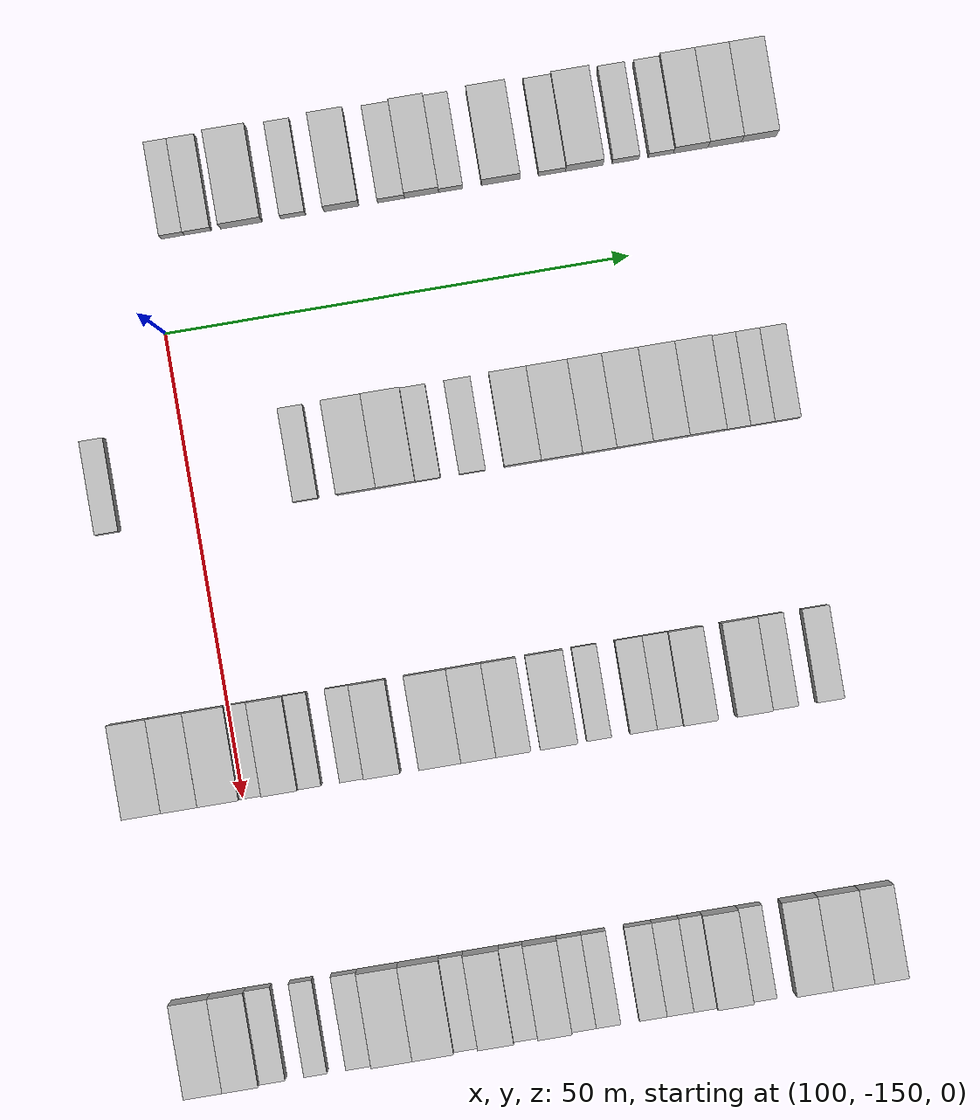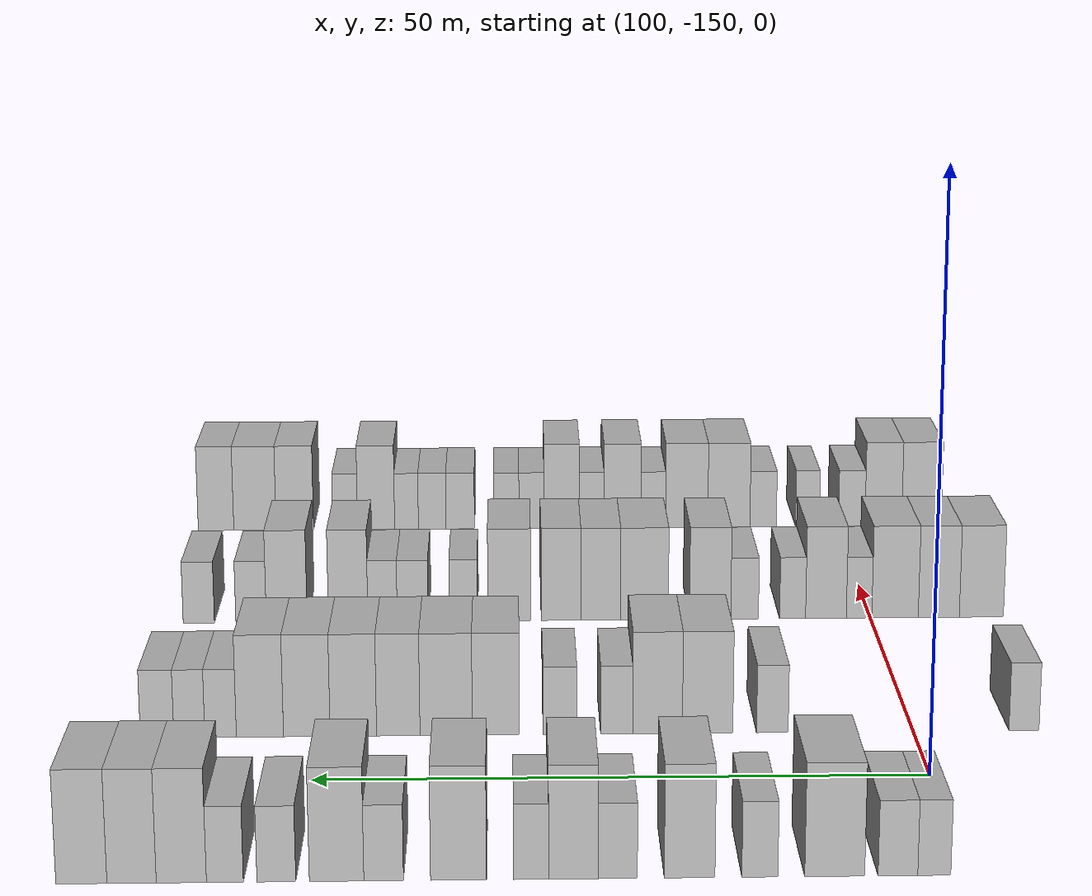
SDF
<sdf version="1.6">
 <world name="default">
  <model name="building_519">
   <static>1</static>
   <pose>85.0000 -147.4879 0 0.000000 0.000000 0.000000</pose>
   <link name="link">
    <pose>0 0 3.00 0 0 0</pose>
    <collision name="collision"><geometry><box><size>10.0000 2.4620 6.0000</size></box></geometry></collision>
    <visual name="visual">
     <cast_shadows>0</cast_shadows>
     <geometry><box><size>10.0000 2.4620 6.0000</size></box></geometry>
     <material>
      <script>
       <uri>model://HANNAS_wall/materials/scripts</uri>
       <uri>model://HANNAS_wall/materials/textures</uri>
       <name>vrc/HANNAS_wall</name>
      </script>
     </material>
    </visual>
   </link>
  </model>
  <model name="building_520">
   <static>1</static>
   <pose>85.0000 -144.7792 0 0.000000 0.000000 0.000000</pose>
   <link name="link">
    <pose>0 0 3.00 0 0 0</pose>
    <collision name="collision"><geometry><box><size>10.0000 2.9552 6.0000</size></box></geometry></collision>
    <visual name="visual">
     <cast_shadows>0</cast_shadows>
     <geometry><box><size>10.0000 2.9552 6.0000</size></box></geometry>
     <material>
      <script>
       <uri>model://HANNAS_wall/materials/scripts</uri>
       <uri>model://HANNAS_wall/materials/textures</uri>
       <name>vrc/HANNAS_wall</name>
      </script>
     </material>
    </visual>
   </link>
  </model>
  <model name="building_521">
   <static>1</static>
   <pose>85.0000 -140.0698 0 0.000000 0.000000 0.000000</pose>
   <link name="link">
    <pose>0 0 4.50 0 0 0</pose>
    <collision name="collision"><geometry><box><size>10.0000 4.4636 9.0000</size></box></geometry></collision>
    <visual name="visual">
     <cast_shadows>0</cast_shadows>
     <geometry><box><size>10.0000 4.4636 9.0000</size></box></geometry>
     <material>
      <script>
       <uri>model://HANNAS_wall/materials/scripts</uri>
       <uri>model://HANNAS_wall/materials/textures</uri>
       <name>vrc/HANNAS_wall</name>
      </script>
     </material>
    </visual>
   </link>
  </model>
  <model name="building_522">
   <static>1</static>
   <pose>85.0000 -134.5011 0 0.000000 0.000000 0.000000</pose>
   <link name="link">
    <pose>0 0 3.00 0 0 0</pose>
    <collision name="collision"><geometry><box><size>10.0000 2.6740 6.0000</size></box></geometry></collision>
    <visual name="visual">
     <cast_shadows>0</cast_shadows>
     <geometry><box><size>10.0000 2.6740 6.0000</size></box></geometry>
     <material>
      <script>
       <uri>model://HANNAS_wall/materials/scripts</uri>
       <uri>model://HANNAS_wall/materials/textures</uri>
       <name>vrc/HANNAS_wall</name>
      </script>
     </material>
    </visual>
   </link>
  </model>
  <model name="building_523">
   <static>1</static>
   <pose>85.0000 -129.2854 0 0.000000 0.000000 0.000000</pose>
   <link name="link">
    <pose>0 0 4.50 0 0 0</pose>
    <collision name="collision"><geometry><box><size>10.0000 3.7574 9.0000</size></box></geometry></collision>
    <visual name="visual">
     <cast_shadows>0</cast_shadows>
     <geometry><box><size>10.0000 3.7574 9.0000</size></box></geometry>
     <material>
      <script>
       <uri>model://HANNAS_wall/materials/scripts</uri>
       <uri>model://HANNAS_wall/materials/textures</uri>
       <name>vrc/HANNAS_wall</name>
      </script>
     </material>
    </visual>
   </link>
  </model>
  <model name="building_524">
   <static>1</static>
   <pose>85.0000 -123.9575 0 0.000000 0.000000 0.000000</pose>
   <link name="link">
    <pose>0 0 3.00 0 0 0</pose>
    <collision name="collision"><geometry><box><size>10.0000 2.8983 6.0000</size></box></geometry></collision>
    <visual name="visual">
     <cast_shadows>0</cast_shadows>
     <geometry><box><size>10.0000 2.8983 6.0000</size></box></geometry>
     <material>
      <script>
       <uri>model://HANNAS_wall/materials/scripts</uri>
       <uri>model://HANNAS_wall/materials/textures</uri>
       <name>vrc/HANNAS_wall</name>
      </script>
     </material>
    </visual>
   </link>
  </model>
  <model name="building_525">
   <static>1</static>
   <pose>85.0000 -120.6703 0 0.000000 0.000000 0.000000</pose>
   <link name="link">
    <pose>0 0 4.50 0 0 0</pose>
    <collision name="collision"><geometry><box><size>10.0000 3.6761 9.0000</size></box></geometry></collision>
    <visual name="visual">
     <cast_shadows>0</cast_shadows>
     <geometry><box><size>10.0000 3.6761 9.0000</size></box></geometry>
     <material>
      <script>
       <uri>model://HANNAS_wall/materials/scripts</uri>
       <uri>model://HANNAS_wall/materials/textures</uri>
       <name>vrc/HANNAS_wall</name>
      </script>
     </material>
    </visual>
   </link>
  </model>
  <model name="building_526">
   <static>1</static>
   <pose>85.0000 -117.5320 0 0.000000 0.000000 0.000000</pose>
   <link name="link">
    <pose>0 0 3.00 0 0 0</pose>
    <collision name="collision"><geometry><box><size>10.0000 2.6005 6.0000</size></box></geometry></collision>
    <visual name="visual">
     <cast_shadows>0</cast_shadows>
     <geometry><box><size>10.0000 2.6005 6.0000</size></box></geometry>
     <material>
      <script>
       <uri>model://HANNAS_wall/materials/scripts</uri>
       <uri>model://HANNAS_wall/materials/textures</uri>
       <name>vrc/HANNAS_wall</name>
      </script>
     </material>
    </visual>
   </link>
  </model>
  <model name="building_527">
   <static>1</static>
   <pose>85.0000 -112.1590 0 0.000000 0.000000 0.000000</pose>
   <link name="link">
    <pose>0 0 4.50 0 0 0</pose>
    <collision name="collision"><geometry><box><size>10.0000 4.1455 9.0000</size></box></geometry></collision>
    <visual name="visual">
     <cast_shadows>0</cast_shadows>
     <geometry><box><size>10.0000 4.1455 9.0000</size></box></geometry>
     <material>
      <script>
       <uri>model://HANNAS_wall/materials/scripts</uri>
       <uri>model://HANNAS_wall/materials/textures</uri>
       <name>vrc/HANNAS_wall</name>
      </script>
     </material>
    </visual>
   </link>
  </model>
  <model name="building_528">
   <static>1</static>
   <pose>85.0000 -106.6222 0 0.000000 0.000000 0.000000</pose>
   <link name="link">
    <pose>0 0 3.00 0 0 0</pose>
    <collision name="collision"><geometry><box><size>10.0000 2.9282 6.0000</size></box></geometry></collision>
    <visual name="visual">
     <cast_shadows>0</cast_shadows>
     <geometry><box><size>10.0000 2.9282 6.0000</size></box></geometry>
     <material>
      <script>
       <uri>model://HANNAS_wall/materials/scripts</uri>
       <uri>model://HANNAS_wall/materials/textures</uri>
       <name>vrc/HANNAS_wall</name>
      </script>
     </material>
    </visual>
   </link>
  </model>
  <model name="building_529">
   <static>1</static>
   <pose>85.0000 -103.1454 0 0.000000 0.000000 0.000000</pose>
   <link name="link">
    <pose>0 0 4.50 0 0 0</pose>
    <collision name="collision"><geometry><box><size>10.0000 4.0254 9.0000</size></box></geometry></collision>
    <visual name="visual">
     <cast_shadows>0</cast_shadows>
     <geometry><box><size>10.0000 4.0254 9.0000</size></box></geometry>
     <material>
      <script>
       <uri>model://HANNAS_wall/materials/scripts</uri>
       <uri>model://HANNAS_wall/materials/textures</uri>
       <name>vrc/HANNAS_wall</name>
      </script>
     </material>
    </visual>
   </link>
  </model>
  <model name="building_530">
   <static>1</static>
   <pose>85.0000 -98.6992 0 0.000000 0.000000 0.000000</pose>
   <link name="link">
    <pose>0 0 3.00 0 0 0</pose>
    <collision name="collision"><geometry><box><size>10.0000 2.8669 6.0000</size></box></geometry></collision>
    <visual name="visual">
     <cast_shadows>0</cast_shadows>
     <geometry><box><size>10.0000 2.8669 6.0000</size></box></geometry>
     <material>
      <script>
       <uri>model://HANNAS_wall/materials/scripts</uri>
       <uri>model://HANNAS_wall/materials/textures</uri>
       <name>vrc/HANNAS_wall</name>
      </script>
     </material>
    </visual>
   </link>
  </model>
  <model name="building_531">
   <static>1</static>
   <pose>85.0000 -94.9043 0 0.000000 0.000000 0.000000</pose>
   <link name="link">
    <pose>0 0 3.00 0 0 0</pose>
    <collision name="collision"><geometry><box><size>10.0000 2.7230 6.0000</size></box></geometry></collision>
    <visual name="visual">
     <cast_shadows>0</cast_shadows>
     <geometry><box><size>10.0000 2.7230 6.0000</size></box></geometry>
     <material>
      <script>
       <uri>model://HANNAS_wall/materials/scripts</uri>
       <uri>model://HANNAS_wall/materials/textures</uri>
       <name>vrc/HANNAS_wall</name>
      </script>
     </material>
    </visual>
   </link>
  </model>
  <model name="building_532">
   <static>1</static>
   <pose>85.0000 -91.6944 0 0.000000 0.000000 0.000000</pose>
   <link name="link">
    <pose>0 0 4.50 0 0 0</pose>
    <collision name="collision"><geometry><box><size>10.0000 3.6968 9.0000</size></box></geometry></collision>
    <visual name="visual">
     <cast_shadows>0</cast_shadows>
     <geometry><box><size>10.0000 3.6968 9.0000</size></box></geometry>
     <material>
      <script>
       <uri>model://HANNAS_wall/materials/scripts</uri>
       <uri>model://HANNAS_wall/materials/textures</uri>
       <name>vrc/HANNAS_wall</name>
      </script>
     </material>
    </visual>
   </link>
  </model>
  <model name="building_533">
   <static>1</static>
   <pose>85.0000 -88.0300 0 0.000000 0.000000 0.000000</pose>
   <link name="link">
    <pose>0 0 4.50 0 0 0</pose>
    <collision name="collision"><geometry><box><size>10.0000 3.6321 9.0000</size></box></geometry></collision>
    <visual name="visual">
     <cast_shadows>0</cast_shadows>
     <geometry><box><size>10.0000 3.6321 9.0000</size></box></geometry>
     <material>
      <script>
       <uri>model://HANNAS_wall/materials/scripts</uri>
       <uri>model://HANNAS_wall/materials/textures</uri>
       <name>vrc/HANNAS_wall</name>
      </script>
     </material>
    </visual>
   </link>
  </model>
  <model name="building_534">
   <static>1</static>
   <pose>85.0000 -84.3361 0 0.000000 0.000000 0.000000</pose>
   <link name="link">
    <pose>0 0 4.50 0 0 0</pose>
    <collision name="collision"><geometry><box><size>10.0000 3.7556 9.0000</size></box></geometry></collision>
    <visual name="visual">
     <cast_shadows>0</cast_shadows>
     <geometry><box><size>10.0000 3.7556 9.0000</size></box></geometry>
     <material>
      <script>
       <uri>model://HANNAS_wall/materials/scripts</uri>
       <uri>model://HANNAS_wall/materials/textures</uri>
       <name>vrc/HANNAS_wall</name>
      </script>
     </material>
    </visual>
   </link>
  </model>
  <model name="building_744">
   <static>1</static>
   <pose>115.0000 -159.3420 0 0.000000 0.000000 0.000000</pose>
   <link name="link">
    <pose>0 0 3.00 0 0 0</pose>
    <collision name="collision"><geometry><box><size>10.0000 2.5429 6.0000</size></box></geometry></collision>
    <visual name="visual">
     <cast_shadows>0</cast_shadows>
     <geometry><box><size>10.0000 2.5429 6.0000</size></box></geometry>
     <material>
      <script>
       <uri>model://HANNAS_wall/materials/scripts</uri>
       <uri>model://HANNAS_wall/materials/textures</uri>
       <name>vrc/HANNAS_wall</name>
      </script>
     </material>
    </visual>
   </link>
  </model>
  <model name="building_745">
   <static>1</static>
   <pose>115.0000 -138.0713 0 0.000000 0.000000 0.000000</pose>
   <link name="link">
    <pose>0 0 3.00 0 0 0</pose>
    <collision name="collision"><geometry><box><size>10.0000 2.6662 6.0000</size></box></geometry></collision>
    <visual name="visual">
     <cast_shadows>0</cast_shadows>
     <geometry><box><size>10.0000 2.6662 6.0000</size></box></geometry>
     <material>
      <script>
       <uri>model://HANNAS_wall/materials/scripts</uri>
       <uri>model://HANNAS_wall/materials/textures</uri>
       <name>vrc/HANNAS_wall</name>
      </script>
     </material>
    </visual>
   </link>
  </model>
  <model name="building_746">
   <static>1</static>
   <pose>115.0000 -132.6159 0 0.000000 0.000000 0.000000</pose>
   <link name="link">
    <pose>0 0 4.50 0 0 0</pose>
    <collision name="collision"><geometry><box><size>10.0000 4.2445 9.0000</size></box></geometry></collision>
    <visual name="visual">
     <cast_shadows>0</cast_shadows>
     <geometry><box><size>10.0000 4.2445 9.0000</size></box></geometry>
     <material>
      <script>
       <uri>model://HANNAS_wall/materials/scripts</uri>
       <uri>model://HANNAS_wall/materials/textures</uri>
       <name>vrc/HANNAS_wall</name>
      </script>
     </material>
    </visual>
   </link>
  </model>
  <model name="building_747">
   <static>1</static>
   <pose>115.0000 -128.4034 0 0.000000 0.000000 0.000000</pose>
   <link name="link">
    <pose>0 0 4.50 0 0 0</pose>
    <collision name="collision"><geometry><box><size>10.0000 4.1806 9.0000</size></box></geometry></collision>
    <visual name="visual">
     <cast_shadows>0</cast_shadows>
     <geometry><box><size>10.0000 4.1806 9.0000</size></box></geometry>
     <material>
      <script>
       <uri>model://HANNAS_wall/materials/scripts</uri>
       <uri>model://HANNAS_wall/materials/textures</uri>
       <name>vrc/HANNAS_wall</name>
      </script>
     </material>
    </visual>
   </link>
  </model>
  <model name="building_748">
   <static>1</static>
   <pose>115.0000 -124.9645 0 0.000000 0.000000 0.000000</pose>
   <link name="link">
    <pose>0 0 3.00 0 0 0</pose>
    <collision name="collision"><geometry><box><size>10.0000 2.6971 6.0000</size></box></geometry></collision>
    <visual name="visual">
     <cast_shadows>0</cast_shadows>
     <geometry><box><size>10.0000 2.6971 6.0000</size></box></geometry>
     <material>
      <script>
       <uri>model://HANNAS_wall/materials/scripts</uri>
       <uri>model://HANNAS_wall/materials/textures</uri>
       <name>vrc/HANNAS_wall</name>
      </script>
     </material>
    </visual>
   </link>
  </model>
  <model name="building_749">
   <static>1</static>
   <pose>115.0000 -120.2051 0 0.000000 0.000000 0.000000</pose>
   <link name="link">
    <pose>0 0 3.00 0 0 0</pose>
    <collision name="collision"><geometry><box><size>10.0000 2.8218 6.0000</size></box></geometry></collision>
    <visual name="visual">
     <cast_shadows>0</cast_shadows>
     <geometry><box><size>10.0000 2.8218 6.0000</size></box></geometry>
     <material>
      <script>
       <uri>model://HANNAS_wall/materials/scripts</uri>
       <uri>model://HANNAS_wall/materials/textures</uri>
       <name>vrc/HANNAS_wall</name>
      </script>
     </material>
    </visual>
   </link>
  </model>
  <model name="building_750">
   <static>1</static>
   <pose>115.0000 -114.8148 0 0.000000 0.000000 0.000000</pose>
   <link name="link">
    <pose>0 0 4.50 0 0 0</pose>
    <collision name="collision"><geometry><box><size>10.0000 3.9588 9.0000</size></box></geometry></collision>
    <visual name="visual">
     <cast_shadows>0</cast_shadows>
     <geometry><box><size>10.0000 3.9588 9.0000</size></box></geometry>
     <material>
      <script>
       <uri>model://HANNAS_wall/materials/scripts</uri>
       <uri>model://HANNAS_wall/materials/textures</uri>
       <name>vrc/HANNAS_wall</name>
      </script>
     </material>
    </visual>
   </link>
  </model>
  <model name="building_751">
   <static>1</static>
   <pose>115.0000 -110.6397 0 0.000000 0.000000 0.000000</pose>
   <link name="link">
    <pose>0 0 4.50 0 0 0</pose>
    <collision name="collision"><geometry><box><size>10.0000 4.3912 9.0000</size></box></geometry></collision>
    <visual name="visual">
     <cast_shadows>0</cast_shadows>
     <geometry><box><size>10.0000 4.3912 9.0000</size></box></geometry>
     <material>
      <script>
       <uri>model://HANNAS_wall/materials/scripts</uri>
       <uri>model://HANNAS_wall/materials/textures</uri>
       <name>vrc/HANNAS_wall</name>
      </script>
     </material>
    </visual>
   </link>
  </model>
  <model name="building_752">
   <static>1</static>
   <pose>115.0000 -106.6235 0 0.000000 0.000000 0.000000</pose>
   <link name="link">
    <pose>0 0 4.50 0 0 0</pose>
    <collision name="collision"><geometry><box><size>10.0000 3.6411 9.0000</size></box></geometry></collision>
    <visual name="visual">
     <cast_shadows>0</cast_shadows>
     <geometry><box><size>10.0000 3.6411 9.0000</size></box></geometry>
     <material>
      <script>
       <uri>model://HANNAS_wall/materials/scripts</uri>
       <uri>model://HANNAS_wall/materials/textures</uri>
       <name>vrc/HANNAS_wall</name>
      </script>
     </material>
    </visual>
   </link>
  </model>
  <model name="building_753">
   <static>1</static>
   <pose>115.0000 -102.8577 0 0.000000 0.000000 0.000000</pose>
   <link name="link">
    <pose>0 0 4.50 0 0 0</pose>
    <collision name="collision"><geometry><box><size>10.0000 3.8905 9.0000</size></box></geometry></collision>
    <visual name="visual">
     <cast_shadows>0</cast_shadows>
     <geometry><box><size>10.0000 3.8905 9.0000</size></box></geometry>
     <material>
      <script>
       <uri>model://HANNAS_wall/materials/scripts</uri>
       <uri>model://HANNAS_wall/materials/textures</uri>
       <name>vrc/HANNAS_wall</name>
      </script>
     </material>
    </visual>
   </link>
  </model>
  <model name="building_754">
   <static>1</static>
   <pose>115.0000 -98.9599 0 0.000000 0.000000 0.000000</pose>
   <link name="link">
    <pose>0 0 4.50 0 0 0</pose>
    <collision name="collision"><geometry><box><size>10.0000 3.9052 9.0000</size></box></geometry></collision>
    <visual name="visual">
     <cast_shadows>0</cast_shadows>
     <geometry><box><size>10.0000 3.9052 9.0000</size></box></geometry>
     <material>
      <script>
       <uri>model://HANNAS_wall/materials/scripts</uri>
       <uri>model://HANNAS_wall/materials/textures</uri>
       <name>vrc/HANNAS_wall</name>
      </script>
     </material>
    </visual>
   </link>
  </model>
  <model name="building_755">
   <static>1</static>
   <pose>115.0000 -95.0354 0 0.000000 0.000000 0.000000</pose>
   <link name="link">
    <pose>0 0 4.50 0 0 0</pose>
    <collision name="collision"><geometry><box><size>10.0000 3.9437 9.0000</size></box></geometry></collision>
    <visual name="visual">
     <cast_shadows>0</cast_shadows>
     <geometry><box><size>10.0000 3.9437 9.0000</size></box></geometry>
     <material>
      <script>
       <uri>model://HANNAS_wall/materials/scripts</uri>
       <uri>model://HANNAS_wall/materials/textures</uri>
       <name>vrc/HANNAS_wall</name>
      </script>
     </material>
    </visual>
   </link>
  </model>
  <model name="building_756">
   <static>1</static>
   <pose>115.0000 -91.7449 0 0.000000 0.000000 0.000000</pose>
   <link name="link">
    <pose>0 0 3.00 0 0 0</pose>
    <collision name="collision"><geometry><box><size>10.0000 2.6372 6.0000</size></box></geometry></collision>
    <visual name="visual">
     <cast_shadows>0</cast_shadows>
     <geometry><box><size>10.0000 2.6372 6.0000</size></box></geometry>
     <material>
      <script>
       <uri>model://HANNAS_wall/materials/scripts</uri>
       <uri>model://HANNAS_wall/materials/textures</uri>
       <name>vrc/HANNAS_wall</name>
      </script>
     </material>
    </visual>
   </link>
  </model>
  <model name="building_757">
   <static>1</static>
   <pose>115.0000 -89.1315 0 0.000000 0.000000 0.000000</pose>
   <link name="link">
    <pose>0 0 3.00 0 0 0</pose>
    <collision name="collision"><geometry><box><size>10.0000 2.5898 6.0000</size></box></geometry></collision>
    <visual name="visual">
     <cast_shadows>0</cast_shadows>
     <geometry><box><size>10.0000 2.5898 6.0000</size></box></geometry>
     <material>
      <script>
       <uri>model://HANNAS_wall/materials/scripts</uri>
       <uri>model://HANNAS_wall/materials/textures</uri>
       <name>vrc/HANNAS_wall</name>
      </script>
     </material>
    </visual>
   </link>
  </model>
  <model name="building_758">
   <static>1</static>
   <pose>115.0000 -86.4374 0 0.000000 0.000000 0.000000</pose>
   <link name="link">
    <pose>0 0 3.00 0 0 0</pose>
    <collision name="collision"><geometry><box><size>10.0000 2.7984 6.0000</size></box></geometry></collision>
    <visual name="visual">
     <cast_shadows>0</cast_shadows>
     <geometry><box><size>10.0000 2.7984 6.0000</size></box></geometry>
     <material>
      <script>
       <uri>model://HANNAS_wall/materials/scripts</uri>
       <uri>model://HANNAS_wall/materials/textures</uri>
       <name>vrc/HANNAS_wall</name>
      </script>
     </material>
    </visual>
   </link>
  </model>
  <model name="building_959">
   <static>1</static>
   <pose>145.0000 -160.4644 0 0.000000 0.000000 0.000000</pose>
   <link name="link">
    <pose>0 0 4.50 0 0 0</pose>
    <collision name="collision"><geometry><box><size>10.0000 4.1777 9.0000</size></box></geometry></collision>
    <visual name="visual">
     <cast_shadows>0</cast_shadows>
     <geometry><box><size>10.0000 4.1777 9.0000</size></box></geometry>
     <material>
      <script>
       <uri>model://HANNAS_wall/materials/scripts</uri>
       <uri>model://HANNAS_wall/materials/textures</uri>
       <name>vrc/HANNAS_wall</name>
      </script>
     </material>
    </visual>
   </link>
  </model>
  <model name="building_960">
   <static>1</static>
   <pose>145.0000 -156.4339 0 0.000000 0.000000 0.000000</pose>
   <link name="link">
    <pose>0 0 4.50 0 0 0</pose>
    <collision name="collision"><geometry><box><size>10.0000 3.8832 9.0000</size></box></geometry></collision>
    <visual name="visual">
     <cast_shadows>0</cast_shadows>
     <geometry><box><size>10.0000 3.8832 9.0000</size></box></geometry>
     <material>
      <script>
       <uri>model://HANNAS_wall/materials/scripts</uri>
       <uri>model://HANNAS_wall/materials/textures</uri>
       <name>vrc/HANNAS_wall</name>
      </script>
     </material>
    </visual>
   </link>
  </model>
  <model name="building_961">
   <static>1</static>
   <pose>145.0000 -152.2972 0 0.000000 0.000000 0.000000</pose>
   <link name="link">
    <pose>0 0 4.50 0 0 0</pose>
    <collision name="collision"><geometry><box><size>10.0000 4.3901 9.0000</size></box></geometry></collision>
    <visual name="visual">
     <cast_shadows>0</cast_shadows>
     <geometry><box><size>10.0000 4.3901 9.0000</size></box></geometry>
     <material>
      <script>
       <uri>model://HANNAS_wall/materials/scripts</uri>
       <uri>model://HANNAS_wall/materials/textures</uri>
       <name>vrc/HANNAS_wall</name>
      </script>
     </material>
    </visual>
   </link>
  </model>
  <model name="building_962">
   <static>1</static>
   <pose>145.0000 -148.8975 0 0.000000 0.000000 0.000000</pose>
   <link name="link">
    <pose>0 0 3.00 0 0 0</pose>
    <collision name="collision"><geometry><box><size>10.0000 2.4093 6.0000</size></box></geometry></collision>
    <visual name="visual">
     <cast_shadows>0</cast_shadows>
     <geometry><box><size>10.0000 2.4093 6.0000</size></box></geometry>
     <material>
      <script>
       <uri>model://HANNAS_wall/materials/scripts</uri>
       <uri>model://HANNAS_wall/materials/textures</uri>
       <name>vrc/HANNAS_wall</name>
      </script>
     </material>
    </visual>
   </link>
  </model>
  <model name="building_963">
   <static>1</static>
   <pose>145.0000 -145.7713 0 0.000000 0.000000 0.000000</pose>
   <link name="link">
    <pose>0 0 4.50 0 0 0</pose>
    <collision name="collision"><geometry><box><size>10.0000 3.8432 9.0000</size></box></geometry></collision>
    <visual name="visual">
     <cast_shadows>0</cast_shadows>
     <geometry><box><size>10.0000 3.8432 9.0000</size></box></geometry>
     <material>
      <script>
       <uri>model://HANNAS_wall/materials/scripts</uri>
       <uri>model://HANNAS_wall/materials/textures</uri>
       <name>vrc/HANNAS_wall</name>
      </script>
     </material>
    </visual>
   </link>
  </model>
  <model name="building_964">
   <static>1</static>
   <pose>145.0000 -142.6241 0 0.000000 0.000000 0.000000</pose>
   <link name="link">
    <pose>0 0 3.00 0 0 0</pose>
    <collision name="collision"><geometry><box><size>10.0000 2.4512 6.0000</size></box></geometry></collision>
    <visual name="visual">
     <cast_shadows>0</cast_shadows>
     <geometry><box><size>10.0000 2.4512 6.0000</size></box></geometry>
     <material>
      <script>
       <uri>model://HANNAS_wall/materials/scripts</uri>
       <uri>model://HANNAS_wall/materials/textures</uri>
       <name>vrc/HANNAS_wall</name>
      </script>
     </material>
    </visual>
   </link>
  </model>
  <model name="building_965">
   <static>1</static>
   <pose>145.0000 -138.0955 0 0.000000 0.000000 0.000000</pose>
   <link name="link">
    <pose>0 0 3.00 0 0 0</pose>
    <collision name="collision"><geometry><box><size>10.0000 2.6059 6.0000</size></box></geometry></collision>
    <visual name="visual">
     <cast_shadows>0</cast_shadows>
     <geometry><box><size>10.0000 2.6059 6.0000</size></box></geometry>
     <material>
      <script>
       <uri>model://HANNAS_wall/materials/scripts</uri>
       <uri>model://HANNAS_wall/materials/textures</uri>
       <name>vrc/HANNAS_wall</name>
      </script>
     </material>
    </visual>
   </link>
  </model>
  <model name="building_966">
   <static>1</static>
   <pose>145.0000 -134.8523 0 0.000000 0.000000 0.000000</pose>
   <link name="link">
    <pose>0 0 4.50 0 0 0</pose>
    <collision name="collision"><geometry><box><size>10.0000 3.8804 9.0000</size></box></geometry></collision>
    <visual name="visual">
     <cast_shadows>0</cast_shadows>
     <geometry><box><size>10.0000 3.8804 9.0000</size></box></geometry>
     <material>
      <script>
       <uri>model://HANNAS_wall/materials/scripts</uri>
       <uri>model://HANNAS_wall/materials/textures</uri>
       <name>vrc/HANNAS_wall</name>
      </script>
     </material>
    </visual>
   </link>
  </model>
  <model name="building_967">
   <static>1</static>
   <pose>145.0000 -128.6656 0 0.000000 0.000000 0.000000</pose>
   <link name="link">
    <pose>0 0 4.50 0 0 0</pose>
    <collision name="collision"><geometry><box><size>10.0000 4.4930 9.0000</size></box></geometry></collision>
    <visual name="visual">
     <cast_shadows>0</cast_shadows>
     <geometry><box><size>10.0000 4.4930 9.0000</size></box></geometry>
     <material>
      <script>
       <uri>model://HANNAS_wall/materials/scripts</uri>
       <uri>model://HANNAS_wall/materials/textures</uri>
       <name>vrc/HANNAS_wall</name>
      </script>
     </material>
    </visual>
   </link>
  </model>
  <model name="building_968">
   <static>1</static>
   <pose>145.0000 -124.5519 0 0.000000 0.000000 0.000000</pose>
   <link name="link">
    <pose>0 0 4.50 0 0 0</pose>
    <collision name="collision"><geometry><box><size>10.0000 3.7345 9.0000</size></box></geometry></collision>
    <visual name="visual">
     <cast_shadows>0</cast_shadows>
     <geometry><box><size>10.0000 3.7345 9.0000</size></box></geometry>
     <material>
      <script>
       <uri>model://HANNAS_wall/materials/scripts</uri>
       <uri>model://HANNAS_wall/materials/textures</uri>
       <name>vrc/HANNAS_wall</name>
      </script>
     </material>
    </visual>
   </link>
  </model>
  <model name="building_969">
   <static>1</static>
   <pose>145.0000 -120.8276 0 0.000000 0.000000 0.000000</pose>
   <link name="link">
    <pose>0 0 4.50 0 0 0</pose>
    <collision name="collision"><geometry><box><size>10.0000 3.7141 9.0000</size></box></geometry></collision>
    <visual name="visual">
     <cast_shadows>0</cast_shadows>
     <geometry><box><size>10.0000 3.7141 9.0000</size></box></geometry>
     <material>
      <script>
       <uri>model://HANNAS_wall/materials/scripts</uri>
       <uri>model://HANNAS_wall/materials/textures</uri>
       <name>vrc/HANNAS_wall</name>
      </script>
     </material>
    </visual>
   </link>
  </model>
  <model name="building_970">
   <static>1</static>
   <pose>145.0000 -115.9665 0 0.000000 0.000000 0.000000</pose>
   <link name="link">
    <pose>0 0 4.50 0 0 0</pose>
    <collision name="collision"><geometry><box><size>10.0000 4.0082 9.0000</size></box></geometry></collision>
    <visual name="visual">
     <cast_shadows>0</cast_shadows>
     <geometry><box><size>10.0000 4.0082 9.0000</size></box></geometry>
     <material>
      <script>
       <uri>model://HANNAS_wall/materials/scripts</uri>
       <uri>model://HANNAS_wall/materials/textures</uri>
       <name>vrc/HANNAS_wall</name>
      </script>
     </material>
    </visual>
   </link>
  </model>
  <model name="building_971">
   <static>1</static>
   <pose>145.0000 -111.6476 0 0.000000 0.000000 0.000000</pose>
   <link name="link">
    <pose>0 0 3.00 0 0 0</pose>
    <collision name="collision"><geometry><box><size>10.0000 2.6297 6.0000</size></box></geometry></collision>
    <visual name="visual">
     <cast_shadows>0</cast_shadows>
     <geometry><box><size>10.0000 2.6297 6.0000</size></box></geometry>
     <material>
      <script>
       <uri>model://HANNAS_wall/materials/scripts</uri>
       <uri>model://HANNAS_wall/materials/textures</uri>
       <name>vrc/HANNAS_wall</name>
      </script>
     </material>
    </visual>
   </link>
  </model>
  <model name="building_972">
   <static>1</static>
   <pose>145.0000 -106.8847 0 0.000000 0.000000 0.000000</pose>
   <link name="link">
    <pose>0 0 3.00 0 0 0</pose>
    <collision name="collision"><geometry><box><size>10.0000 2.8959 6.0000</size></box></geometry></collision>
    <visual name="visual">
     <cast_shadows>0</cast_shadows>
     <geometry><box><size>10.0000 2.8959 6.0000</size></box></geometry>
     <material>
      <script>
       <uri>model://HANNAS_wall/materials/scripts</uri>
       <uri>model://HANNAS_wall/materials/textures</uri>
       <name>vrc/HANNAS_wall</name>
      </script>
     </material>
    </visual>
   </link>
  </model>
  <model name="building_973">
   <static>1</static>
   <pose>145.0000 -104.0609 0 0.000000 0.000000 0.000000</pose>
   <link name="link">
    <pose>0 0 3.00 0 0 0</pose>
    <collision name="collision"><geometry><box><size>10.0000 2.7517 6.0000</size></box></geometry></collision>
    <visual name="visual">
     <cast_shadows>0</cast_shadows>
     <geometry><box><size>10.0000 2.7517 6.0000</size></box></geometry>
     <material>
      <script>
       <uri>model://HANNAS_wall/materials/scripts</uri>
       <uri>model://HANNAS_wall/materials/textures</uri>
       <name>vrc/HANNAS_wall</name>
      </script>
     </material>
    </visual>
   </link>
  </model>
  <model name="building_974">
   <static>1</static>
   <pose>145.0000 -100.8433 0 0.000000 0.000000 0.000000</pose>
   <link name="link">
    <pose>0 0 4.50 0 0 0</pose>
    <collision name="collision"><geometry><box><size>10.0000 3.6837 9.0000</size></box></geometry></collision>
    <visual name="visual">
     <cast_shadows>0</cast_shadows>
     <geometry><box><size>10.0000 3.6837 9.0000</size></box></geometry>
     <material>
      <script>
       <uri>model://HANNAS_wall/materials/scripts</uri>
       <uri>model://HANNAS_wall/materials/textures</uri>
       <name>vrc/HANNAS_wall</name>
      </script>
     </material>
    </visual>
   </link>
  </model>
  <model name="building_975">
   <static>1</static>
   <pose>145.0000 -95.0889 0 0.000000 0.000000 0.000000</pose>
   <link name="link">
    <pose>0 0 4.50 0 0 0</pose>
    <collision name="collision"><geometry><box><size>10.0000 3.8249 9.0000</size></box></geometry></collision>
    <visual name="visual">
     <cast_shadows>0</cast_shadows>
     <geometry><box><size>10.0000 3.8249 9.0000</size></box></geometry>
     <material>
      <script>
       <uri>model://HANNAS_wall/materials/scripts</uri>
       <uri>model://HANNAS_wall/materials/textures</uri>
       <name>vrc/HANNAS_wall</name>
      </script>
     </material>
    </visual>
   </link>
  </model>
  <model name="building_976">
   <static>1</static>
   <pose>145.0000 -91.7509 0 0.000000 0.000000 0.000000</pose>
   <link name="link">
    <pose>0 0 3.00 0 0 0</pose>
    <collision name="collision"><geometry><box><size>10.0000 2.8511 6.0000</size></box></geometry></collision>
    <visual name="visual">
     <cast_shadows>0</cast_shadows>
     <geometry><box><size>10.0000 2.8511 6.0000</size></box></geometry>
     <material>
      <script>
       <uri>model://HANNAS_wall/materials/scripts</uri>
       <uri>model://HANNAS_wall/materials/textures</uri>
       <name>vrc/HANNAS_wall</name>
      </script>
     </material>
    </visual>
   </link>
  </model>
  <model name="building_977">
   <static>1</static>
   <pose>145.0000 -86.8628 0 0.000000 0.000000 0.000000</pose>
   <link name="link">
    <pose>0 0 3.00 0 0 0</pose>
    <collision name="collision"><geometry><box><size>10.0000 2.9250 6.0000</size></box></geometry></collision>
    <visual name="visual">
     <cast_shadows>0</cast_shadows>
     <geometry><box><size>10.0000 2.9250 6.0000</size></box></geometry>
     <material>
      <script>
       <uri>model://HANNAS_wall/materials/scripts</uri>
       <uri>model://HANNAS_wall/materials/textures</uri>
       <name>vrc/HANNAS_wall</name>
      </script>
     </material>
    </visual>
   </link>
  </model>
  <model name="building_1194">
   <static>1</static>
   <pose>175.0000 -158.9153 0 0.000000 0.000000 0.000000</pose>
   <link name="link">
    <pose>0 0 4.50 0 0 0</pose>
    <collision name="collision"><geometry><box><size>10.0000 4.1361 9.0000</size></box></geometry></collision>
    <visual name="visual">
     <cast_shadows>0</cast_shadows>
     <geometry><box><size>10.0000 4.1361 9.0000</size></box></geometry>
     <material>
      <script>
       <uri>model://HANNAS_wall/materials/scripts</uri>
       <uri>model://HANNAS_wall/materials/textures</uri>
       <name>vrc/HANNAS_wall</name>
      </script>
     </material>
    </visual>
   </link>
  </model>
  <model name="building_1195">
   <static>1</static>
   <pose>175.0000 -154.9313 0 0.000000 0.000000 0.000000</pose>
   <link name="link">
    <pose>0 0 4.50 0 0 0</pose>
    <collision name="collision"><geometry><box><size>10.0000 3.8318 9.0000</size></box></geometry></collision>
    <visual name="visual">
     <cast_shadows>0</cast_shadows>
     <geometry><box><size>10.0000 3.8318 9.0000</size></box></geometry>
     <material>
      <script>
       <uri>model://HANNAS_wall/materials/scripts</uri>
       <uri>model://HANNAS_wall/materials/textures</uri>
       <name>vrc/HANNAS_wall</name>
      </script>
     </material>
    </visual>
   </link>
  </model>
  <model name="building_1196">
   <static>1</static>
   <pose>175.0000 -151.6332 0 0.000000 0.000000 0.000000</pose>
   <link name="link">
    <pose>0 0 3.00 0 0 0</pose>
    <collision name="collision"><geometry><box><size>10.0000 2.7644 6.0000</size></box></geometry></collision>
    <visual name="visual">
     <cast_shadows>0</cast_shadows>
     <geometry><box><size>10.0000 2.7644 6.0000</size></box></geometry>
     <material>
      <script>
       <uri>model://HANNAS_wall/materials/scripts</uri>
       <uri>model://HANNAS_wall/materials/textures</uri>
       <name>vrc/HANNAS_wall</name>
      </script>
     </material>
    </visual>
   </link>
  </model>
  <model name="building_1197">
   <static>1</static>
   <pose>175.0000 -147.0108 0 0.000000 0.000000 0.000000</pose>
   <link name="link">
    <pose>0 0 3.00 0 0 0</pose>
    <collision name="collision"><geometry><box><size>10.0000 2.4803 6.0000</size></box></geometry></collision>
    <visual name="visual">
     <cast_shadows>0</cast_shadows>
     <geometry><box><size>10.0000 2.4803 6.0000</size></box></geometry>
     <material>
      <script>
       <uri>model://HANNAS_wall/materials/scripts</uri>
       <uri>model://HANNAS_wall/materials/textures</uri>
       <name>vrc/HANNAS_wall</name>
      </script>
     </material>
    </visual>
   </link>
  </model>
  <model name="building_1198">
   <static>1</static>
   <pose>175.0000 -142.3928 0 0.000000 0.000000 0.000000</pose>
   <link name="link">
    <pose>0 0 3.00 0 0 0</pose>
    <collision name="collision"><geometry><box><size>10.0000 2.7558 6.0000</size></box></geometry></collision>
    <visual name="visual">
     <cast_shadows>0</cast_shadows>
     <geometry><box><size>10.0000 2.7558 6.0000</size></box></geometry>
     <material>
      <script>
       <uri>model://HANNAS_wall/materials/scripts</uri>
       <uri>model://HANNAS_wall/materials/textures</uri>
       <name>vrc/HANNAS_wall</name>
      </script>
     </material>
    </visual>
   </link>
  </model>
  <model name="building_1199">
   <static>1</static>
   <pose>175.0000 -138.8213 0 0.000000 0.000000 0.000000</pose>
   <link name="link">
    <pose>0 0 4.50 0 0 0</pose>
    <collision name="collision"><geometry><box><size>10.0000 4.3872 9.0000</size></box></geometry></collision>
    <visual name="visual">
     <cast_shadows>0</cast_shadows>
     <geometry><box><size>10.0000 4.3872 9.0000</size></box></geometry>
     <material>
      <script>
       <uri>model://HANNAS_wall/materials/scripts</uri>
       <uri>model://HANNAS_wall/materials/textures</uri>
       <name>vrc/HANNAS_wall</name>
      </script>
     </material>
    </visual>
   </link>
  </model>
  <model name="building_1200">
   <static>1</static>
   <pose>175.0000 -134.4235 0 0.000000 0.000000 0.000000</pose>
   <link name="link">
    <pose>0 0 4.50 0 0 0</pose>
    <collision name="collision"><geometry><box><size>10.0000 4.4083 9.0000</size></box></geometry></collision>
    <visual name="visual">
     <cast_shadows>0</cast_shadows>
     <geometry><box><size>10.0000 4.4083 9.0000</size></box></geometry>
     <material>
      <script>
       <uri>model://HANNAS_wall/materials/scripts</uri>
       <uri>model://HANNAS_wall/materials/textures</uri>
       <name>vrc/HANNAS_wall</name>
      </script>
     </material>
    </visual>
   </link>
  </model>
  <model name="building_1201">
   <static>1</static>
   <pose>175.0000 -130.9438 0 0.000000 0.000000 0.000000</pose>
   <link name="link">
    <pose>0 0 3.00 0 0 0</pose>
    <collision name="collision"><geometry><box><size>10.0000 2.5512 6.0000</size></box></geometry></collision>
    <visual name="visual">
     <cast_shadows>0</cast_shadows>
     <geometry><box><size>10.0000 2.5512 6.0000</size></box></geometry>
     <material>
      <script>
       <uri>model://HANNAS_wall/materials/scripts</uri>
       <uri>model://HANNAS_wall/materials/textures</uri>
       <name>vrc/HANNAS_wall</name>
      </script>
     </material>
    </visual>
   </link>
  </model>
  <model name="building_1202">
   <static>1</static>
   <pose>175.0000 -127.7486 0 0.000000 0.000000 0.000000</pose>
   <link name="link">
    <pose>0 0 4.50 0 0 0</pose>
    <collision name="collision"><geometry><box><size>10.0000 3.8391 9.0000</size></box></geometry></collision>
    <visual name="visual">
     <cast_shadows>0</cast_shadows>
     <geometry><box><size>10.0000 3.8391 9.0000</size></box></geometry>
     <material>
      <script>
       <uri>model://HANNAS_wall/materials/scripts</uri>
       <uri>model://HANNAS_wall/materials/textures</uri>
       <name>vrc/HANNAS_wall</name>
      </script>
     </material>
    </visual>
   </link>
  </model>
  <model name="building_1203">
   <static>1</static>
   <pose>175.0000 -124.5480 0 0.000000 0.000000 0.000000</pose>
   <link name="link">
    <pose>0 0 3.00 0 0 0</pose>
    <collision name="collision"><geometry><box><size>10.0000 2.5622 6.0000</size></box></geometry></collision>
    <visual name="visual">
     <cast_shadows>0</cast_shadows>
     <geometry><box><size>10.0000 2.5622 6.0000</size></box></geometry>
     <material>
      <script>
       <uri>model://HANNAS_wall/materials/scripts</uri>
       <uri>model://HANNAS_wall/materials/textures</uri>
       <name>vrc/HANNAS_wall</name>
      </script>
     </material>
    </visual>
   </link>
  </model>
  <model name="building_1204">
   <static>1</static>
   <pose>175.0000 -121.4387 0 0.000000 0.000000 0.000000</pose>
   <link name="link">
    <pose>0 0 4.50 0 0 0</pose>
    <collision name="collision"><geometry><box><size>10.0000 3.6563 9.0000</size></box></geometry></collision>
    <visual name="visual">
     <cast_shadows>0</cast_shadows>
     <geometry><box><size>10.0000 3.6563 9.0000</size></box></geometry>
     <material>
      <script>
       <uri>model://HANNAS_wall/materials/scripts</uri>
       <uri>model://HANNAS_wall/materials/textures</uri>
       <name>vrc/HANNAS_wall</name>
      </script>
     </material>
    </visual>
   </link>
  </model>
  <model name="building_1205">
   <static>1</static>
   <pose>175.0000 -118.2980 0 0.000000 0.000000 0.000000</pose>
   <link name="link">
    <pose>0 0 3.00 0 0 0</pose>
    <collision name="collision"><geometry><box><size>10.0000 2.6251 6.0000</size></box></geometry></collision>
    <visual name="visual">
     <cast_shadows>0</cast_shadows>
     <geometry><box><size>10.0000 2.6251 6.0000</size></box></geometry>
     <material>
      <script>
       <uri>model://HANNAS_wall/materials/scripts</uri>
       <uri>model://HANNAS_wall/materials/textures</uri>
       <name>vrc/HANNAS_wall</name>
      </script>
     </material>
    </visual>
   </link>
  </model>
  <model name="building_1206">
   <static>1</static>
   <pose>175.0000 -115.6744 0 0.000000 0.000000 0.000000</pose>
   <link name="link">
    <pose>0 0 3.00 0 0 0</pose>
    <collision name="collision"><geometry><box><size>10.0000 2.6221 6.0000</size></box></geometry></collision>
    <visual name="visual">
     <cast_shadows>0</cast_shadows>
     <geometry><box><size>10.0000 2.6221 6.0000</size></box></geometry>
     <material>
      <script>
       <uri>model://HANNAS_wall/materials/scripts</uri>
       <uri>model://HANNAS_wall/materials/textures</uri>
       <name>vrc/HANNAS_wall</name>
      </script>
     </material>
    </visual>
   </link>
  </model>
  <model name="building_1207">
   <static>1</static>
   <pose>175.0000 -110.8883 0 0.000000 0.000000 0.000000</pose>
   <link name="link">
    <pose>0 0 3.00 0 0 0</pose>
    <collision name="collision"><geometry><box><size>10.0000 2.9503 6.0000</size></box></geometry></collision>
    <visual name="visual">
     <cast_shadows>0</cast_shadows>
     <geometry><box><size>10.0000 2.9503 6.0000</size></box></geometry>
     <material>
      <script>
       <uri>model://HANNAS_wall/materials/scripts</uri>
       <uri>model://HANNAS_wall/materials/textures</uri>
       <name>vrc/HANNAS_wall</name>
      </script>
     </material>
    </visual>
   </link>
  </model>
  <model name="building_1208">
   <static>1</static>
   <pose>175.0000 -107.9786 0 0.000000 0.000000 0.000000</pose>
   <link name="link">
    <pose>0 0 3.00 0 0 0</pose>
    <collision name="collision"><geometry><box><size>10.0000 2.8690 6.0000</size></box></geometry></collision>
    <visual name="visual">
     <cast_shadows>0</cast_shadows>
     <geometry><box><size>10.0000 2.8690 6.0000</size></box></geometry>
     <material>
      <script>
       <uri>model://HANNAS_wall/materials/scripts</uri>
       <uri>model://HANNAS_wall/materials/textures</uri>
       <name>vrc/HANNAS_wall</name>
      </script>
     </material>
    </visual>
   </link>
  </model>
  <model name="building_1209">
   <static>1</static>
   <pose>175.0000 -105.3117 0 0.000000 0.000000 0.000000</pose>
   <link name="link">
    <pose>0 0 3.00 0 0 0</pose>
    <collision name="collision"><geometry><box><size>10.0000 2.4649 6.0000</size></box></geometry></collision>
    <visual name="visual">
     <cast_shadows>0</cast_shadows>
     <geometry><box><size>10.0000 2.4649 6.0000</size></box></geometry>
     <material>
      <script>
       <uri>model://HANNAS_wall/materials/scripts</uri>
       <uri>model://HANNAS_wall/materials/textures</uri>
       <name>vrc/HANNAS_wall</name>
      </script>
     </material>
    </visual>
   </link>
  </model>
  <model name="building_1210">
   <static>1</static>
   <pose>175.0000 -102.1615 0 0.000000 0.000000 0.000000</pose>
   <link name="link">
    <pose>0 0 4.50 0 0 0</pose>
    <collision name="collision"><geometry><box><size>10.0000 3.8354 9.0000</size></box></geometry></collision>
    <visual name="visual">
     <cast_shadows>0</cast_shadows>
     <geometry><box><size>10.0000 3.8354 9.0000</size></box></geometry>
     <material>
      <script>
       <uri>model://HANNAS_wall/materials/scripts</uri>
       <uri>model://HANNAS_wall/materials/textures</uri>
       <name>vrc/HANNAS_wall</name>
      </script>
     </material>
    </visual>
   </link>
  </model>
  <model name="building_1211">
   <static>1</static>
   <pose>175.0000 -98.9621 0 0.000000 0.000000 0.000000</pose>
   <link name="link">
    <pose>0 0 3.00 0 0 0</pose>
    <collision name="collision"><geometry><box><size>10.0000 2.5634 6.0000</size></box></geometry></collision>
    <visual name="visual">
     <cast_shadows>0</cast_shadows>
     <geometry><box><size>10.0000 2.5634 6.0000</size></box></geometry>
     <material>
      <script>
       <uri>model://HANNAS_wall/materials/scripts</uri>
       <uri>model://HANNAS_wall/materials/textures</uri>
       <name>vrc/HANNAS_wall</name>
      </script>
     </material>
    </visual>
   </link>
  </model>
  <model name="building_1212">
   <static>1</static>
   <pose>175.0000 -93.7397 0 0.000000 0.000000 0.000000</pose>
   <link name="link">
    <pose>0 0 4.50 0 0 0</pose>
    <collision name="collision"><geometry><box><size>10.0000 3.8813 9.0000</size></box></geometry></collision>
    <visual name="visual">
     <cast_shadows>0</cast_shadows>
     <geometry><box><size>10.0000 3.8813 9.0000</size></box></geometry>
     <material>
      <script>
       <uri>model://HANNAS_wall/materials/scripts</uri>
       <uri>model://HANNAS_wall/materials/textures</uri>
       <name>vrc/HANNAS_wall</name>
      </script>
     </material>
    </visual>
   </link>
  </model>
  <model name="building_1213">
   <static>1</static>
   <pose>175.0000 -89.6084 0 0.000000 0.000000 0.000000</pose>
   <link name="link">
    <pose>0 0 4.50 0 0 0</pose>
    <collision name="collision"><geometry><box><size>10.0000 4.3813 9.0000</size></box></geometry></collision>
    <visual name="visual">
     <cast_shadows>0</cast_shadows>
     <geometry><box><size>10.0000 4.3813 9.0000</size></box></geometry>
     <material>
      <script>
       <uri>model://HANNAS_wall/materials/scripts</uri>
       <uri>model://HANNAS_wall/materials/textures</uri>
       <name>vrc/HANNAS_wall</name>
      </script>
     </material>
    </visual>
   </link>
  </model>
  <model name="building_1214">
   <static>1</static>
   <pose>175.0000 -85.5825 0 0.000000 0.000000 0.000000</pose>
   <link name="link">
    <pose>0 0 4.50 0 0 0</pose>
    <collision name="collision"><geometry><box><size>10.0000 3.6707 9.0000</size></box></geometry></collision>
    <visual name="visual">
     <cast_shadows>0</cast_shadows>
     <geometry><box><size>10.0000 3.6707 9.0000</size></box></geometry>
     <material>
      <script>
       <uri>model://HANNAS_wall/materials/scripts</uri>
       <uri>model://HANNAS_wall/materials/textures</uri>
       <name>vrc/HANNAS_wall</name>
      </script>
     </material>
    </visual>
   </link>
  </model>
 </world>
</sdf>
